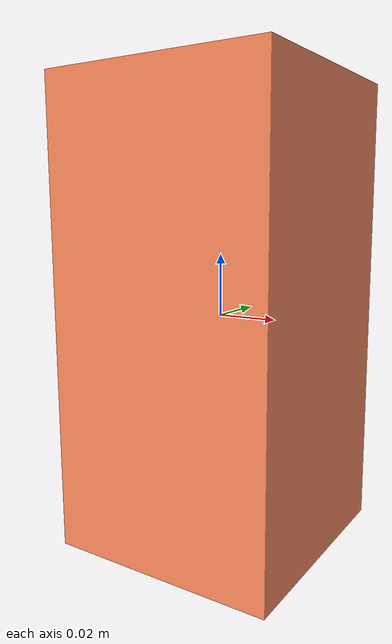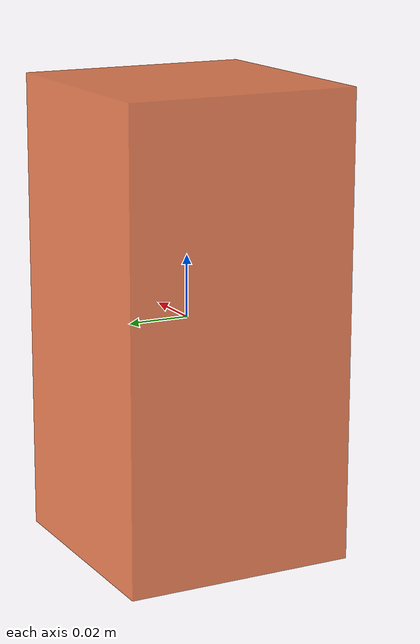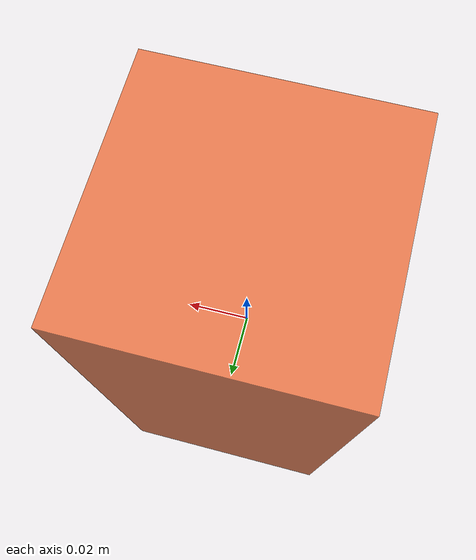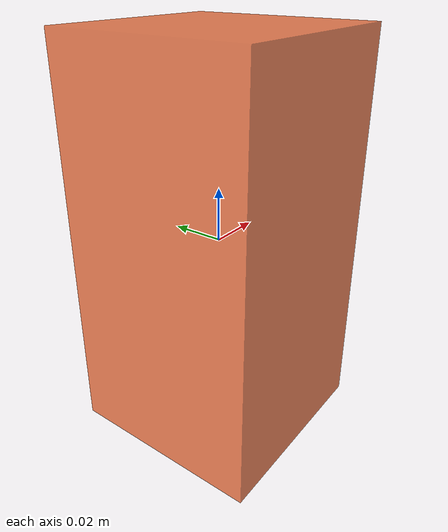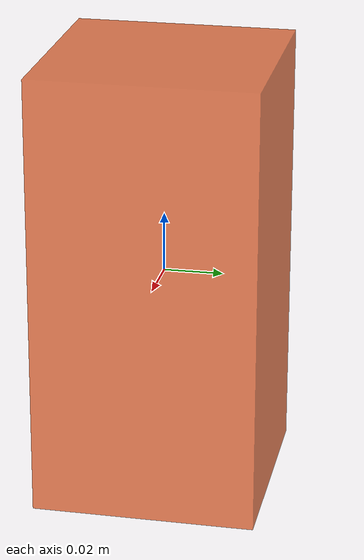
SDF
<?xml version="1.0"?>
<sdf version="1.9">
  <model name="box_075_075_150_static">
    <static>true</static>
    <link name="body">
      <gravity>false</gravity>
      <inertial>
        <mass>1.0</mass>
        <inertia>
          <ixx>0.001875</ixx>
          <iyy>0.001875</iyy>
          <izz>0.000938</izz>
          <ixy>0</ixy>
          <ixz>0</ixz>
          <iyz>0</iyz>
        </inertia>
      </inertial>
      <collision name="collision">
        <geometry>
          <box>
            <size>0.075 0.075 0.15</size>
          </box>
        </geometry>
        <surface>
          <friction>
            <ode>
              <mu>1.0</mu>
              <mu2>1.0</mu2>
            </ode>
          </friction>
          <bounce>
            <restitution_coefficient>0.0</restitution_coefficient>
          </bounce>
        </surface>
      </collision>
      <visual name="visual">
        <geometry>
          <box>
            <size>0.075 0.075 0.15</size>
          </box>
        </geometry>
        <material>
          <ambient>0.95 0.45 0.25 0.85</ambient>
          <diffuse>0.95 0.45 0.25 0.85</diffuse>
        </material>
      </visual>
    </link>
  </model>
</sdf>
